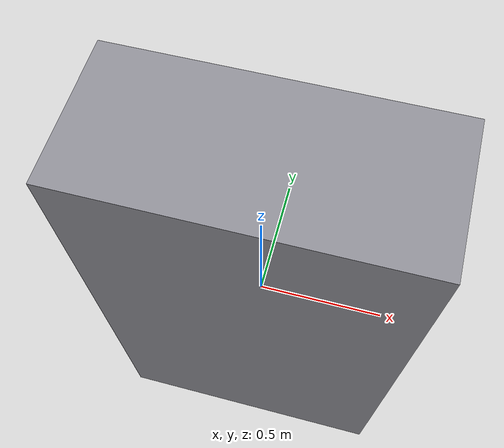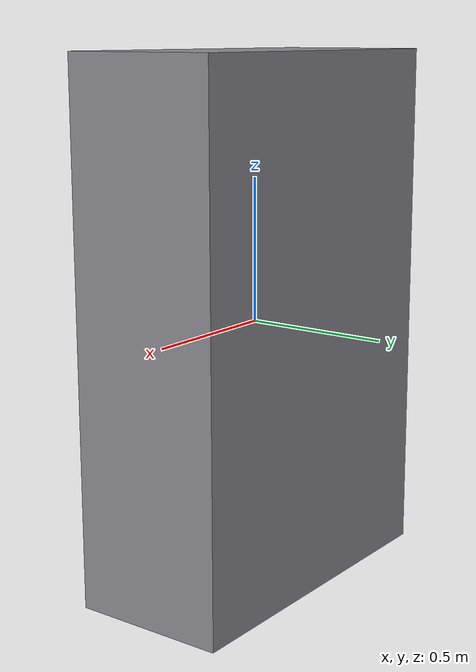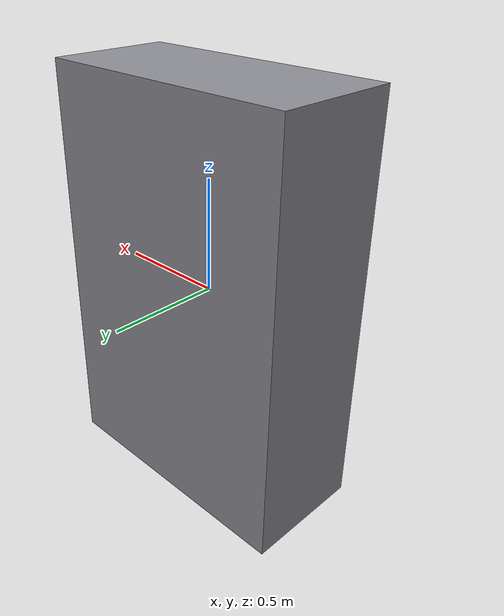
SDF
<?xml version="1.0"?>
<sdf version="1.6">
  <model name="StorageRack">
    <static>true</static>
    <link name="link">
      <collision name="col">
        <geometry>
          <box>
            <size>1.2 0.55 1.85</size>
          </box>
        </geometry>
      </collision>
      <visual name="vis">
        <geometry>
          <box>
            <size>1.2 0.55 1.85</size>
          </box>
        </geometry>
        <material>
          <ambient>0.55 0.55 0.58 1</ambient>
          <diffuse>0.55 0.55 0.58 1</diffuse>
        </material>
      </visual>
    </link>
  </model>
</sdf>
